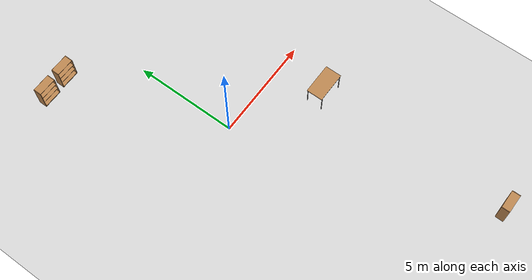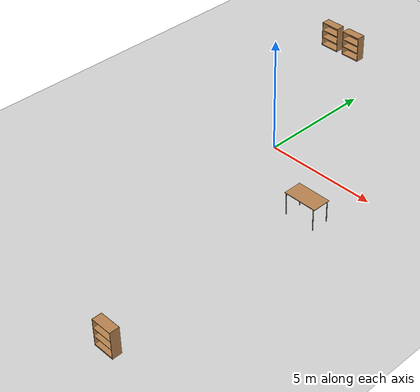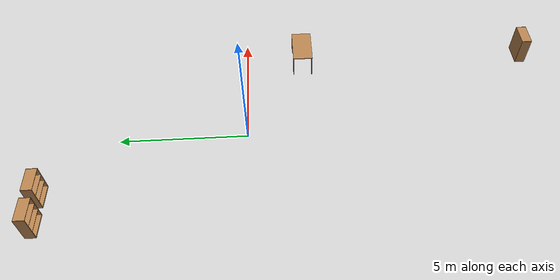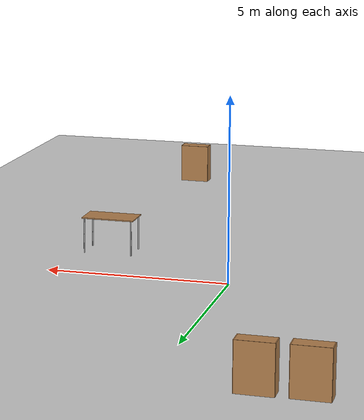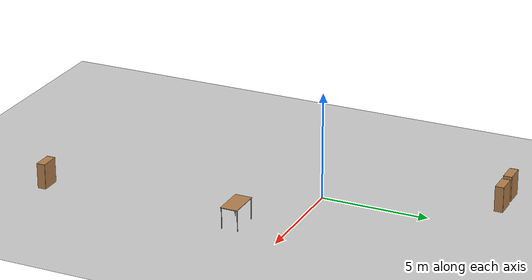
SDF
<sdf version="1.6">
 <world name="default">
  <light name="sun" type="directional">
   <cast_shadows>0</cast_shadows>
   <pose>0 0 10 0 -0 0</pose>
   <diffuse>0.8 0.8 0.8 1</diffuse>
   <specular>0.2 0.2 0.2 1</specular>
   <attenuation>
    <range>1000</range>
    <constant>0.9</constant>
    <linear>0.01</linear>
    <quadratic>0.001</quadratic>
   </attenuation>
   <direction>0 0.5 -0.9</direction>
  </light>
  <light name="point_light" type="point">
   <pose>0 -0.377195 6.59868 0 -0 0</pose>
   <diffuse>0.784314 0.784314 0.784314 1</diffuse>
   <specular>0.0980392 0.0980392 0.0980392 1</specular>
   <attenuation>
    <range>50</range>
    <constant>0.8</constant>
    <linear>0</linear>
    <quadratic>0.001</quadratic>
   </attenuation>
   <cast_shadows>0</cast_shadows>
   <direction>0 0 -1</direction>
  </light>
  <model name="ground_plane">
   <static>1</static>
   <link name="link">
    <collision name="collision">
     <geometry><plane><normal>0 0 1</normal><size>100 100</size></plane></geometry>
     <surface><friction><ode><mu>100</mu><mu2>50</mu2></ode></friction></surface>
    </collision>
    <visual name="visual">
     <cast_shadows>0</cast_shadows>
     <geometry><plane><normal>0 0 1</normal><size>100 100</size></plane></geometry>
     <material>
      <script><uri>file://media/materials/scripts/gazebo.material</uri><name>Gazebo/Grey</name></script>
     </material>
    </visual>
   </link>
  </model>
  <gravity>0 0 -9.8</gravity>
  <magnetic_field>6e-06 2.3e-05 -4.2e-05</magnetic_field>
  <atmosphere type="adiabatic"/>
  <physics name="default_physics" default="0" type="ode">
   <max_step_size>0.001</max_step_size>
   <real_time_factor>1</real_time_factor>
   <real_time_update_rate>1000</real_time_update_rate>
  </physics>
  <scene><ambient>0.4 0.4 0.4 1</ambient><background>0.7 0.7 0.7 1</background><shadows>1</shadows></scene>
  <spherical_coordinates>
   <surface_model>EARTH_WGS84</surface_model>
   <latitude_deg>0</latitude_deg>
   <longitude_deg>0</longitude_deg>
   <elevation>0</elevation>
   <heading_deg>0</heading_deg>
  </spherical_coordinates>
  <model name="table">
   <static>1</static>
   <link name="link">
    <collision name="surface">
     <pose>0 0 1 0 -0 0</pose>
     <geometry><box><size>1.5 0.8 0.03</size></box></geometry>
     <surface><friction><ode><mu>0.6</mu><mu2>0.6</mu2></ode></friction></surface>
    </collision>
    <visual name="visual1">
     <pose>0 0 1 0 -0 0</pose>
     <geometry><box><size>1.5 0.8 0.03</size></box></geometry>
     <material>
      <script><uri>file://media/materials/scripts/gazebo.material</uri><name>Gazebo/Wood</name></script>
     </material>
    </visual>
    <collision name="front_left_leg">
     <pose>0.68 0.38 0.5 0 -0 0</pose>
     <geometry><cylinder><radius>0.02</radius><length>1</length></cylinder></geometry>
    </collision>
    <visual name="front_left_leg">
     <pose>0.68 0.38 0.5 0 -0 0</pose>
     <geometry><cylinder><radius>0.02</radius><length>1</length></cylinder></geometry>
     <material>
      <script><uri>file://media/materials/scripts/gazebo.material</uri><name>Gazebo/Grey</name></script>
     </material>
    </visual>
    <collision name="front_right_leg">
     <pose>0.68 -0.38 0.5 0 -0 0</pose>
     <geometry><cylinder><radius>0.02</radius><length>1</length></cylinder></geometry>
    </collision>
    <visual name="front_right_leg">
     <pose>0.68 -0.38 0.5 0 -0 0</pose>
     <geometry><cylinder><radius>0.02</radius><length>1</length></cylinder></geometry>
     <material>
      <script><uri>file://media/materials/scripts/gazebo.material</uri><name>Gazebo/Grey</name></script>
     </material>
    </visual>
    <collision name="back_right_leg">
     <pose>-0.68 -0.38 0.5 0 -0 0</pose>
     <geometry><cylinder><radius>0.02</radius><length>1</length></cylinder></geometry>
    </collision>
    <visual name="back_right_leg">
     <pose>-0.68 -0.38 0.5 0 -0 0</pose>
     <geometry><cylinder><radius>0.02</radius><length>1</length></cylinder></geometry>
     <material>
      <script><uri>file://media/materials/scripts/gazebo.material</uri><name>Gazebo/Grey</name></script>
     </material>
    </visual>
    <collision name="back_left_leg">
     <pose>-0.68 0.38 0.5 0 -0 0</pose>
     <geometry><cylinder><radius>0.02</radius><length>1</length></cylinder></geometry>
    </collision>
    <visual name="back_left_leg">
     <pose>-0.68 0.38 0.5 0 -0 0</pose>
     <geometry><cylinder><radius>0.02</radius><length>1</length></cylinder></geometry>
     <material>
      <script><uri>file://media/materials/scripts/gazebo.material</uri><name>Gazebo/Grey</name></script>
     </material>
    </visual>
   </link>
   <pose>3.94407 -2.34455 0 0 -0 0</pose>
  </model>
  <model name="bookshelf">
   <static>1</static>
   <link name="link">
    <inertial><mass>1</mass></inertial>
    <collision name="back">
     <pose>0 0.005 0.6 0 -0 0</pose>
     <geometry><box><size>0.9 0.01 1.2</size></box></geometry>
    </collision>
    <visual name="visual1">
     <pose>0 0.005 0.6 0 -0 0</pose>
     <geometry><box><size>0.9 0.01 1.2</size></box></geometry>
     <material>
      <script><uri>file://media/materials/scripts/gazebo.material</uri><name>Gazebo/Wood</name></script>
     </material>
    </visual>
    <collision name="left_side">
     <pose>0.45 -0.195 0.6 0 -0 0</pose>
     <geometry><box><size>0.02 0.4 1.2</size></box></geometry>
    </collision>
    <visual name="visual2">
     <pose>0.45 -0.195 0.6 0 -0 0</pose>
     <geometry><box><size>0.02 0.4 1.2</size></box></geometry>
     <material>
      <script><uri>file://media/materials/scripts/gazebo.material</uri><name>Gazebo/Wood</name></script>
     </material>
    </visual>
    <collision name="right_side">
     <pose>-0.45 -0.195 0.6 0 -0 0</pose>
     <geometry><box><size>0.02 0.4 1.2</size></box></geometry>
    </collision>
    <visual name="visual3">
     <pose>-0.45 -0.195 0.6 0 -0 0</pose>
     <geometry><box><size>0.02 0.4 1.2</size></box></geometry>
     <material>
      <script><uri>file://media/materials/scripts/gazebo.material</uri><name>Gazebo/Wood</name></script>
     </material>
    </visual>
    <collision name="bottom">
     <pose>0 -0.195 0.03 0 -0 0</pose>
     <geometry><box><size>0.88 0.4 0.06</size></box></geometry>
    </collision>
    <visual name="visual4">
     <pose>0 -0.195 0.03 0 -0 0</pose>
     <geometry><box><size>0.88 0.4 0.06</size></box></geometry>
     <material>
      <script><uri>file://media/materials/scripts/gazebo.material</uri><name>Gazebo/Wood</name></script>
     </material>
    </visual>
    <collision name="top">
     <pose>0 -0.195 1.19 0 -0 0</pose>
     <geometry><box><size>0.88 0.4 0.02</size></box></geometry>
    </collision>
    <visual name="visual5">
     <pose>0 -0.195 1.19 0 -0 0</pose>
     <geometry><box><size>0.88 0.4 0.02</size></box></geometry>
     <material>
      <script><uri>file://media/materials/scripts/gazebo.material</uri><name>Gazebo/Wood</name></script>
     </material>
    </visual>
    <collision name="low_shelf">
     <pose>0 -0.195 0.43 0 -0 0</pose>
     <geometry><box><size>0.88 0.4 0.02</size></box></geometry>
    </collision>
    <visual name="visual6">
     <pose>0 -0.195 0.43 0 -0 0</pose>
     <geometry><box><size>0.88 0.4 0.02</size></box></geometry>
     <material>
      <script><uri>file://media/materials/scripts/gazebo.material</uri><name>Gazebo/Wood</name></script>
     </material>
    </visual>
    <collision name="high_shelf">
     <pose>0 -0.195 0.8 0 -0 0</pose>
     <geometry><box><size>0.88 0.4 0.02</size></box></geometry>
    </collision>
    <visual name="visual7">
     <pose>0 -0.195 0.8 0 -0 0</pose>
     <geometry><box><size>0.88 0.4 0.02</size></box></geometry>
     <material>
      <script><uri>file://media/materials/scripts/gazebo.material</uri><name>Gazebo/Wood</name></script>
     </material>
    </visual>
   </link>
   <pose>3.93141 -11.6635 0 0 -0 0</pose>
  </model>
  <model name="bookshelf_0">
   <static>1</static>
   <link name="link">
    <inertial><mass>1</mass></inertial>
    <collision name="back">
     <pose>0 0.005 0.6 0 -0 0</pose>
     <geometry><box><size>0.9 0.01 1.2</size></box></geometry>
    </collision>
    <visual name="visual1">
     <pose>0 0.005 0.6 0 -0 0</pose>
     <geometry><box><size>0.9 0.01 1.2</size></box></geometry>
     <material>
      <script><uri>file://media/materials/scripts/gazebo.material</uri><name>Gazebo/Wood</name></script>
     </material>
    </visual>
    <collision name="left_side">
     <pose>0.45 -0.195 0.6 0 -0 0</pose>
     <geometry><box><size>0.02 0.4 1.2</size></box></geometry>
    </collision>
    <visual name="visual2">
     <pose>0.45 -0.195 0.6 0 -0 0</pose>
     <geometry><box><size>0.02 0.4 1.2</size></box></geometry>
     <material>
      <script><uri>file://media/materials/scripts/gazebo.material</uri><name>Gazebo/Wood</name></script>
     </material>
    </visual>
    <collision name="right_side">
     <pose>-0.45 -0.195 0.6 0 -0 0</pose>
     <geometry><box><size>0.02 0.4 1.2</size></box></geometry>
    </collision>
    <visual name="visual3">
     <pose>-0.45 -0.195 0.6 0 -0 0</pose>
     <geometry><box><size>0.02 0.4 1.2</size></box></geometry>
     <material>
      <script><uri>file://media/materials/scripts/gazebo.material</uri><name>Gazebo/Wood</name></script>
     </material>
    </visual>
    <collision name="bottom">
     <pose>0 -0.195 0.03 0 -0 0</pose>
     <geometry><box><size>0.88 0.4 0.06</size></box></geometry>
    </collision>
    <visual name="visual4">
     <pose>0 -0.195 0.03 0 -0 0</pose>
     <geometry><box><size>0.88 0.4 0.06</size></box></geometry>
     <material>
      <script><uri>file://media/materials/scripts/gazebo.material</uri><name>Gazebo/Wood</name></script>
     </material>
    </visual>
    <collision name="top">
     <pose>0 -0.195 1.19 0 -0 0</pose>
     <geometry><box><size>0.88 0.4 0.02</size></box></geometry>
    </collision>
    <visual name="visual5">
     <pose>0 -0.195 1.19 0 -0 0</pose>
     <geometry><box><size>0.88 0.4 0.02</size></box></geometry>
     <material>
      <script><uri>file://media/materials/scripts/gazebo.material</uri><name>Gazebo/Wood</name></script>
     </material>
    </visual>
    <collision name="low_shelf">
     <pose>0 -0.195 0.43 0 -0 0</pose>
     <geometry><box><size>0.88 0.4 0.02</size></box></geometry>
    </collision>
    <visual name="visual6">
     <pose>0 -0.195 0.43 0 -0 0</pose>
     <geometry><box><size>0.88 0.4 0.02</size></box></geometry>
     <material>
      <script><uri>file://media/materials/scripts/gazebo.material</uri><name>Gazebo/Wood</name></script>
     </material>
    </visual>
    <collision name="high_shelf">
     <pose>0 -0.195 0.8 0 -0 0</pose>
     <geometry><box><size>0.88 0.4 0.02</size></box></geometry>
    </collision>
    <visual name="visual7">
     <pose>0 -0.195 0.8 0 -0 0</pose>
     <geometry><box><size>0.88 0.4 0.02</size></box></geometry>
     <material>
      <script><uri>file://media/materials/scripts/gazebo.material</uri><name>Gazebo/Wood</name></script>
     </material>
    </visual>
   </link>
   <pose>-3.57701 7.73288 0 0 -0 0</pose>
  </model>
  <model name="bookshelf_1">
   <static>1</static>
   <link name="link">
    <inertial><mass>1</mass></inertial>
    <collision name="back">
     <pose>0 0.005 0.6 0 -0 0</pose>
     <geometry><box><size>0.9 0.01 1.2</size></box></geometry>
    </collision>
    <visual name="visual1">
     <pose>0 0.005 0.6 0 -0 0</pose>
     <geometry><box><size>0.9 0.01 1.2</size></box></geometry>
     <material>
      <script><uri>file://media/materials/scripts/gazebo.material</uri><name>Gazebo/Wood</name></script>
     </material>
    </visual>
    <collision name="left_side">
     <pose>0.45 -0.195 0.6 0 -0 0</pose>
     <geometry><box><size>0.02 0.4 1.2</size></box></geometry>
    </collision>
    <visual name="visual2">
     <pose>0.45 -0.195 0.6 0 -0 0</pose>
     <geometry><box><size>0.02 0.4 1.2</size></box></geometry>
     <material>
      <script><uri>file://media/materials/scripts/gazebo.material</uri><name>Gazebo/Wood</name></script>
     </material>
    </visual>
    <collision name="right_side">
     <pose>-0.45 -0.195 0.6 0 -0 0</pose>
     <geometry><box><size>0.02 0.4 1.2</size></box></geometry>
    </collision>
    <visual name="visual3">
     <pose>-0.45 -0.195 0.6 0 -0 0</pose>
     <geometry><box><size>0.02 0.4 1.2</size></box></geometry>
     <material>
      <script><uri>file://media/materials/scripts/gazebo.material</uri><name>Gazebo/Wood</name></script>
     </material>
    </visual>
    <collision name="bottom">
     <pose>0 -0.195 0.03 0 -0 0</pose>
     <geometry><box><size>0.88 0.4 0.06</size></box></geometry>
    </collision>
    <visual name="visual4">
     <pose>0 -0.195 0.03 0 -0 0</pose>
     <geometry><box><size>0.88 0.4 0.06</size></box></geometry>
     <material>
      <script><uri>file://media/materials/scripts/gazebo.material</uri><name>Gazebo/Wood</name></script>
     </material>
    </visual>
    <collision name="top">
     <pose>0 -0.195 1.19 0 -0 0</pose>
     <geometry><box><size>0.88 0.4 0.02</size></box></geometry>
    </collision>
    <visual name="visual5">
     <pose>0 -0.195 1.19 0 -0 0</pose>
     <geometry><box><size>0.88 0.4 0.02</size></box></geometry>
     <material>
      <script><uri>file://media/materials/scripts/gazebo.material</uri><name>Gazebo/Wood</name></script>
     </material>
    </visual>
    <collision name="low_shelf">
     <pose>0 -0.195 0.43 0 -0 0</pose>
     <geometry><box><size>0.88 0.4 0.02</size></box></geometry>
    </collision>
    <visual name="visual6">
     <pose>0 -0.195 0.43 0 -0 0</pose>
     <geometry><box><size>0.88 0.4 0.02</size></box></geometry>
     <material>
      <script><uri>file://media/materials/scripts/gazebo.material</uri><name>Gazebo/Wood</name></script>
     </material>
    </visual>
    <collision name="high_shelf">
     <pose>0 -0.195 0.8 0 -0 0</pose>
     <geometry><box><size>0.88 0.4 0.02</size></box></geometry>
    </collision>
    <visual name="visual7">
     <pose>0 -0.195 0.8 0 -0 0</pose>
     <geometry><box><size>0.88 0.4 0.02</size></box></geometry>
     <material>
      <script><uri>file://media/materials/scripts/gazebo.material</uri><name>Gazebo/Wood</name></script>
     </material>
    </visual>
   </link>
   <pose>-2.37356 7.76606 0 0 -0 0</pose>
  </model>
  <plugin filename="libcollision_map_creator.so" name="collision_map_creator"/>
 </world>
</sdf>
